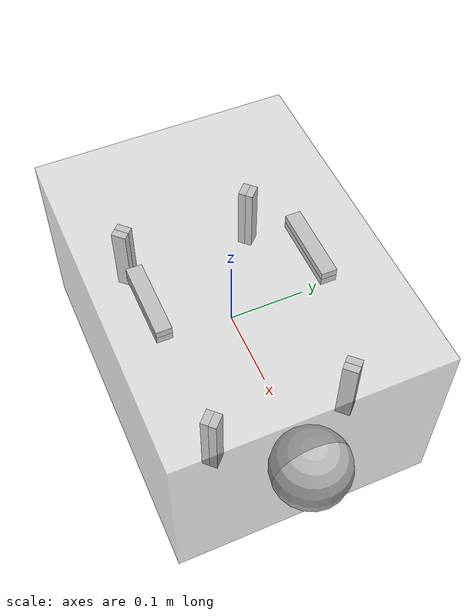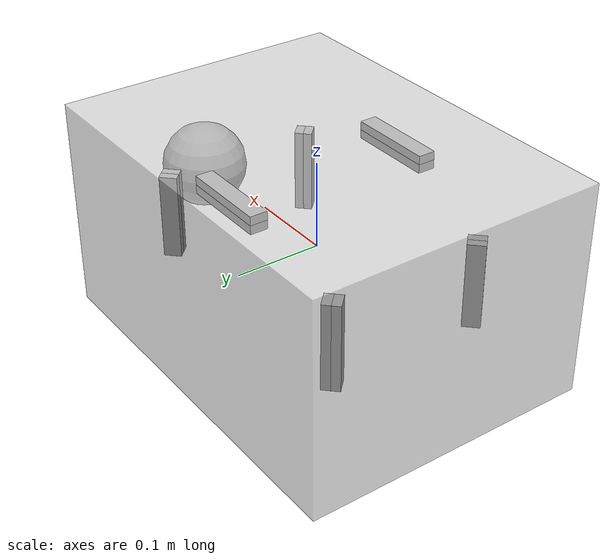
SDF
<?xml version="1.0"?>
<sdf version="1.6">
  <model name="bluerov2_lidar">
    <include merge="true">
      <uri>bluerov2</uri>
    </include>

    <link name="lidar_link">
      <pose>0 -0.0 -0.17 0 1.25 1.25</pose>
      <!-- fake values, ping360 is heavier -->
      <inertial>
        <mass>0.01</mass>
        <inertia>
          <ixx>0.000009427233333333334</ixx>
          <ixy>0</ixy>
          <ixz>0</ixz>
          <iyy>0.000009427233333333333</iyy>
          <iyz>0</iyz>
          <izz>0.000007372799999999999</izz>
        </inertia>
      </inertial>

      <visual name="lidar_visual">
        <transparency>0.5</transparency>
        <geometry>
          <cylinder>
            <radius>0.0385</radius>
            <length>0.053</length>
          </cylinder>
        </geometry>
         <material>
            <ambient>1.0 0.0 0.0 1</ambient>
            <diffuse>1.0 0.0 0.0 1</diffuse>
            <specular>0.0 0.0 0.0 1</specular>
        </material>
      </visual>

      <collision name="lidar_collision">
        <geometry>
          <cylinder>
            <radius>0.0385</radius>
            <length>0.053</length>
          </cylinder>
        </geometry>
      </collision>

      <sensor name='gpu_lidar' type='gpu_lidar'>"
        <topic>lidar</topic>
        <visualize>true</visualize>
        <always_on>1</always_on>
        <update_rate>5</update_rate>
        <ray>
            <scan>
                <horizontal>
                    <samples>1</samples>
                    <resolution>1</resolution>
                    <min_angle>0</min_angle>
                    <max_angle>0</max_angle>
                </horizontal>
                <vertical>
                    <samples>360</samples>
                    <resolution>1</resolution>
                    <min_angle>-0.25</min_angle>
                    <max_angle>0.25</max_angle>
                </vertical>
            </scan>
            <range>
                <min>0.075</min>
                <max>20.0</max>
                <resolution>0.01</resolution>
            </range>
        </ray>
      </sensor>
    </link>

    <joint name="lidar_joint" type="fixed">
      <parent>base_link</parent>
      <child>lidar_link</child>
      <axis>
        <xyz>1 0 0</xyz>
      </axis>
    </joint>

    <frame name="lidar_frame" attached_to='lidar_link'>
      <pose>0 0 0 0 0 0</pose>
    </frame>

  </model>
</sdf>

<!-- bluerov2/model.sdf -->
<sdf version="1.6">
  <model name="bluerov2">
    <pose>0 0 0 0 0 0</pose>

    <!-- BlueROV2 thruster reference: http://www.ardusub.com/introduction/features.html -->
    <!-- fluid_density: 1000 -->
    <!-- displaced_mass: 10.05 -->

    <link name="base_link">
      <inertial>
        <pose>0 0 0.011 0 0 0</pose>
        <mass>10</mass>
        <inertia>
          <ixx>0.09873097998042396</ixx>
          <ixy>0</ixy>
          <ixz>0</ixz>
          <iyy>0.17756847998042397</iyy>
          <iyz>0</iyz>
          <izz>0.2692441666666667</izz>
        </inertia>
      </inertial>

      <visual name="base_link_box">
        <pose>0 0 0 0 0 0</pose>
        <transparency>0.5</transparency>
        <geometry>
          <box>
            <size>0.457 0.338 0.25</size>
          </box>
        </geometry>
      </visual>

      <visual name="base_link_dome">
        <pose>0.2285 0 0 0 0 0</pose>
        <geometry>
          <sphere>
            <radius>0.05</radius>
          </sphere>
        </geometry>
        <material>
          <emissive>0 1 0 0</emissive>
        </material>
      </visual>

      <!-- Collision volume * fluid_density == displaced mass, used by BuoyancyPlugin -->
      <collision name="base_link_collision">
        <pose>0 0 0.06 0 0 0</pose>
        <geometry>
          <box>
            <size>0.457 0.338 0.06506286173008947</size>
          </box>
        </geometry>
      </collision>

      <!-- IMU sensor gyro and accel data will be sent to ArduSub -->
      <sensor name="imu_sensor" type="imu">
        <!-- Transform from the Gazebo body frame (x-forward, y-left, z-up)
             to the ArduPilot body frame (x-forward, y-right, z-down) -->
        <pose>0 0 0 3.141592653589793 0 0</pose>
        <always_on>1</always_on>
        <update_rate>1000.0</update_rate>
      </sensor>

    </link>

    <plugin
        filename="ignition-gazebo-pose-publisher-system"
        name="ignition::gazebo::systems::PosePublisher">
      <publish_link_pose>false</publish_link_pose>
      <publish_collision_pose>false</publish_collision_pose>
      <publish_visual_pose>false</publish_visual_pose>
      <publish_sensor_pose>false</publish_sensor_pose>
      <publish_nested_model_pose>true</publish_nested_model_pose>
      <update_frequency>20</update_frequency>
    </plugin>

    <!-- Hydrodynamics plugin -->
    <plugin
        filename="gz-sim-hydrodynamics-system"
        name="gz::sim::systems::Hydrodynamics">
      <link_name>base_link</link_name>
      <water_density>1000</water_density>
      <!-- Added mass: -->
      <xDotU>0</xDotU>
      <yDotV>0</yDotV>
      <zDotW>0</zDotW>
      <kDotP>0</kDotP>
      <mDotQ>0</mDotQ>
      <nDotR>0</nDotR>
      <!-- First order stability derivative: -->
      <xU>0</xU>
      <yV>0</yV>
      <zW>0</zW>
      <kP>0</kP>
      <mQ>0</mQ>
      <nR>0</nR>
      <!-- Second order stability derivative: -->
      <xUabsU>-33.800000000000004</xUabsU>
      <yVabsV>-54.26875</yVabsV>
      <zWabsW>-73.37135</zWabsW>
      <kPabsP>-4.0</kPabsP>
      <mQabsQ>-4.0</mQabsQ>
      <nRabsR>-4.0</nRabsR>
    </plugin>

    <link name="thruster1">
      <pose>0.15 -0.09 0 -1.5707963267948966 1.5707963267948966 -0.7853981633974483</pose>
      <visual name="thruster_front">
        <pose>0 0 0.005 0 0 0</pose>
        <geometry>
          <box>
            <size>0.1 0.02 0.01</size>
          </box>
        </geometry>
        <material>
          <emissive>0 0 1 0</emissive>
        </material>
      </visual>
      <visual name="thruster_back">
        <pose>0 0 -0.005 0 0 0</pose>
        <geometry>
          <box>
            <size>0.1 0.02 0.01</size>
          </box>
        </geometry>
        <material>
          <emissive>1 0 0 0</emissive>
        </material>
      </visual>
      <inertial>
        <mass>0.002</mass>
        <inertia>
          <ixx>0.001</ixx>
          <ixy>0</ixy>
          <ixz>0</ixz>
          <iyy>0.001</iyy>
          <iyz>0</iyz>
          <izz>0.001</izz>
        </inertia>
      </inertial>
    </link>

    <link name="thruster2">
      <pose>0.15 0.09 0 -1.5707963267948966 1.5707963267948966 -2.356194490192345</pose>
      <visual name="thruster_front">
        <pose>0 0 0.005 0 0 0</pose>
        <geometry>
          <box>
            <size>0.1 0.02 0.01</size>
          </box>
        </geometry>
        <material>
          <emissive>0 0 1 0</emissive>
        </material>
      </visual>
      <visual name="thruster_back">
        <pose>0 0 -0.005 0 0 0</pose>
        <geometry>
          <box>
            <size>0.1 0.02 0.01</size>
          </box>
        </geometry>
        <material>
          <emissive>1 0 0 0</emissive>
        </material>
      </visual>
      <inertial>
        <mass>0.002</mass>
        <inertia>
          <ixx>0.001</ixx>
          <ixy>0</ixy>
          <ixz>0</ixz>
          <iyy>0.001</iyy>
          <iyz>0</iyz>
          <izz>0.001</izz>
        </inertia>
      </inertial>
    </link>

    <link name="thruster3">
      <pose>-0.15 -0.09 0 -1.5707963267948966 1.5707963267948966 0.7853981633974483</pose>
      <visual name="thruster_front">
        <pose>0 0 0.005 0 0 0</pose>
        <geometry>
          <box>
            <size>0.1 0.02 0.01</size>
          </box>
        </geometry>
        <material>
          <emissive>0 0 1 0</emissive>
        </material>
      </visual>
      <visual name="thruster_back">
        <pose>0 0 -0.005 0 0 0</pose>
        <geometry>
          <box>
            <size>0.1 0.02 0.01</size>
          </box>
        </geometry>
        <material>
          <emissive>1 0 0 0</emissive>
        </material>
      </visual>
      <inertial>
        <mass>0.002</mass>
        <inertia>
          <ixx>0.001</ixx>
          <ixy>0</ixy>
          <ixz>0</ixz>
          <iyy>0.001</iyy>
          <iyz>0</iyz>
          <izz>0.001</izz>
        </inertia>
      </inertial>
    </link>

    <link name="thruster4">
      <pose>-0.15 0.09 0 -1.5707963267948966 1.5707963267948966 2.356194490192345</pose>
      <visual name="thruster_front">
        <pose>0 0 0.005 0 0 0</pose>
        <geometry>
          <box>
            <size>0.1 0.02 0.01</size>
          </box>
        </geometry>
        <material>
          <emissive>0 0 1 0</emissive>
        </material>
      </visual>
      <visual name="thruster_back">
        <pose>0 0 -0.005 0 0 0</pose>
        <geometry>
          <box>
            <size>0.1 0.02 0.01</size>
          </box>
        </geometry>
        <material>
          <emissive>1 0 0 0</emissive>
        </material>
      </visual>
      <inertial>
        <mass>0.002</mass>
        <inertia>
          <ixx>0.001</ixx>
          <ixy>0</ixy>
          <ixz>0</ixz>
          <iyy>0.001</iyy>
          <iyz>0</iyz>
          <izz>0.001</izz>
        </inertia>
      </inertial>
    </link>

    <link name="thruster5">
      <pose>0 -0.105 0.09 0 0 0</pose>
      <visual name="thruster_front">
        <pose>0 0 0.005 0 0 0</pose>
        <geometry>
          <box>
            <size>0.1 0.02 0.01</size>
          </box>
        </geometry>
        <material>
          <emissive>0 0 1 0</emissive>
        </material>
      </visual>
      <visual name="thruster_back">
        <pose>0 0 -0.005 0 0 0</pose>
        <geometry>
          <box>
            <size>0.1 0.02 0.01</size>
          </box>
        </geometry>
        <material>
          <emissive>1 0 0 0</emissive>
        </material>
      </visual>
      <inertial>
        <mass>0.002</mass>
        <inertia>
          <ixx>0.001</ixx>
          <ixy>0</ixy>
          <ixz>0</ixz>
          <iyy>0.001</iyy>
          <iyz>0</iyz>
          <izz>0.001</izz>
        </inertia>
      </inertial>
    </link>

    <link name="thruster6">
      <pose>0 0.105 0.09 0 0 0</pose>
      <visual name="thruster_front">
        <pose>0 0 0.005 0 0 0</pose>
        <geometry>
          <box>
            <size>0.1 0.02 0.01</size>
          </box>
        </geometry>
        <material>
          <emissive>0 0 1 0</emissive>
        </material>
      </visual>
      <visual name="thruster_back">
        <pose>0 0 -0.005 0 0 0</pose>
        <geometry>
          <box>
            <size>0.1 0.02 0.01</size>
          </box>
        </geometry>
        <material>
          <emissive>1 0 0 0</emissive>
        </material>
      </visual>
      <inertial>
        <mass>0.002</mass>
        <inertia>
          <ixx>0.001</ixx>
          <ixy>0</ixy>
          <ixz>0</ixz>
          <iyy>0.001</iyy>
          <iyz>0</iyz>
          <izz>0.001</izz>
        </inertia>
      </inertial>
    </link>

    <joint name="thruster1_joint" type="revolute">
      <parent>base_link</parent>
      <child>thruster1</child>
      <axis>
        <xyz>0 0 -1</xyz>
      </axis>
    </joint>

    <joint name="thruster2_joint" type="revolute">
      <parent>base_link</parent>
      <child>thruster2</child>
      <axis>
        <xyz>0 0 -1</xyz>
      </axis>
    </joint>

    <joint name="thruster3_joint" type="revolute">
      <parent>base_link</parent>
      <child>thruster3</child>
      <axis>
        <xyz>0 0 -1</xyz>
      </axis>
    </joint>

    <joint name="thruster4_joint" type="revolute">
      <parent>base_link</parent>
      <child>thruster4</child>
      <axis>
        <xyz>0 0 -1</xyz>
      </axis>
    </joint>

    <joint name="thruster5_joint" type="revolute">
      <parent>base_link</parent>
      <child>thruster5</child>
      <axis>
        <xyz>0 0 -1</xyz>
      </axis>
    </joint>

    <joint name="thruster6_joint" type="revolute">
      <parent>base_link</parent>
      <child>thruster6</child>
      <axis>
        <xyz>0 0 -1</xyz>
      </axis>
    </joint>

    <plugin
        filename="gz-sim-thruster-system"
        name="gz::sim::systems::Thruster">
      <namespace>bluerov2</namespace>
      <joint_name>thruster1_joint</joint_name>
      <thrust_coefficient>0.02</thrust_coefficient>
      <fluid_density>1000</fluid_density>
      <propeller_diameter>0.1</propeller_diameter>
      <velocity_control>true</velocity_control>
      <use_angvel_cmd>False</use_angvel_cmd>
    </plugin>

    <plugin
        filename="gz-sim-thruster-system"
        name="gz::sim::systems::Thruster">
      <namespace>bluerov2</namespace>
      <joint_name>thruster2_joint</joint_name>
      <thrust_coefficient>0.02</thrust_coefficient>
      <fluid_density>1000</fluid_density>
      <propeller_diameter>0.1</propeller_diameter>
      <velocity_control>true</velocity_control>
      <use_angvel_cmd>False</use_angvel_cmd>
    </plugin>

    <plugin
        filename="gz-sim-thruster-system"
        name="gz::sim::systems::Thruster">
      <namespace>bluerov2</namespace>
      <joint_name>thruster3_joint</joint_name>
      <!-- Reverse spin to balance torque -->
      <thrust_coefficient>-0.02</thrust_coefficient>
      <fluid_density>1000</fluid_density>
      <propeller_diameter>0.1</propeller_diameter>
      <velocity_control>true</velocity_control>
      <use_angvel_cmd>False</use_angvel_cmd>
    </plugin>

    <plugin
        filename="gz-sim-thruster-system"
        name="gz::sim::systems::Thruster">
      <namespace>bluerov2</namespace>
      <joint_name>thruster4_joint</joint_name>
      <!-- Reverse spin to balance torque -->
      <thrust_coefficient>-0.02</thrust_coefficient>
      <fluid_density>1000</fluid_density>
      <propeller_diameter>0.1</propeller_diameter>
      <velocity_control>true</velocity_control>
      <use_angvel_cmd>False</use_angvel_cmd>
    </plugin>

    <plugin
        filename="gz-sim-thruster-system"
        name="gz::sim::systems::Thruster">
      <namespace>bluerov2</namespace>
      <joint_name>thruster5_joint</joint_name>
      <thrust_coefficient>0.02</thrust_coefficient>
      <fluid_density>1000</fluid_density>
      <propeller_diameter>0.1</propeller_diameter>
      <velocity_control>true</velocity_control>
      <use_angvel_cmd>False</use_angvel_cmd>
    </plugin>

    <plugin
        filename="gz-sim-thruster-system"
        name="gz::sim::systems::Thruster">
      <namespace>bluerov2</namespace>
      <joint_name>thruster6_joint</joint_name>
      <!-- Reverse spin to balance torque -->
      <thrust_coefficient>-0.02</thrust_coefficient>
      <fluid_density>1000</fluid_density>
      <propeller_diameter>0.1</propeller_diameter>
      <velocity_control>true</velocity_control>
      <use_angvel_cmd>False</use_angvel_cmd>
    </plugin>

    <plugin name="ArduPilotPlugin" filename="libArduPilotPlugin.so">
      <!-- Port settings -->
      <fdm_addr>127.0.0.1</fdm_addr>
      <fdm_port_in>9002</fdm_port_in>
      <connectionTimeoutMaxCount>5</connectionTimeoutMaxCount>
      <lock_step>1</lock_step>

      <!-- Transform from the Gazebo body frame (x-forward, y-left, z-up)
           to the ArduPilot body frame (x-forward, y-right, z-down) -->
      <modelXYZToAirplaneXForwardZDown>0 0 0 3.141592653589793 0 0</modelXYZToAirplaneXForwardZDown>

      <!-- Transform from the Gazebo world frame (ENU)
           to the ArduPilot world frame (NED) -->
      <gazeboXYZToNED>0 0 0 3.141592653589793 0 1.5707963267948966</gazeboXYZToNED>

      <!-- Sensors -->
      <imuName>imu_sensor</imuName>

      <!-- Thrusters -->
      <control channel="0">
        <jointName>thruster1_joint</jointName>
        <servo_min>1100</servo_min>
        <servo_max>1900</servo_max>
        <type>COMMAND</type>
        <cmd_topic>/model/bluerov2/joint/thruster1_joint/cmd_thrust</cmd_topic>
        <offset>-0.5</offset>
        <multiplier>100</multiplier>
      </control>
      <control channel="1">
        <jointName>thruster2_joint</jointName>
        <servo_min>1100</servo_min>
        <servo_max>1900</servo_max>
        <type>COMMAND</type>
        <cmd_topic>/model/bluerov2/joint/thruster2_joint/cmd_thrust</cmd_topic>
        <offset>-0.5</offset>
        <multiplier>100</multiplier>
      </control>
      <control channel="2">
        <jointName>thruster3_joint</jointName>
        <servo_min>1100</servo_min>
        <servo_max>1900</servo_max>
        <type>COMMAND</type>
        <cmd_topic>/model/bluerov2/joint/thruster3_joint/cmd_thrust</cmd_topic>
        <offset>-0.5</offset>
        <multiplier>100</multiplier>
      </control>
      <control channel="3">
        <jointName>thruster4_joint</jointName>
        <servo_min>1100</servo_min>
        <servo_max>1900</servo_max>
        <type>COMMAND</type>
        <cmd_topic>/model/bluerov2/joint/thruster4_joint/cmd_thrust</cmd_topic>
        <offset>-0.5</offset>
        <multiplier>100</multiplier>
      </control>
      <control channel="4">
        <jointName>thruster5_joint</jointName>
        <servo_min>1100</servo_min>
        <servo_max>1900</servo_max>
        <type>COMMAND</type>
        <cmd_topic>/model/bluerov2/joint/thruster5_joint/cmd_thrust</cmd_topic>
        <offset>-0.5</offset>
        <multiplier>100</multiplier>
      </control>
      <control channel="5">
        <jointName>thruster6_joint</jointName>
        <servo_min>1100</servo_min>
        <servo_max>1900</servo_max>
        <type>COMMAND</type>
        <cmd_topic>/model/bluerov2/joint/thruster6_joint/cmd_thrust</cmd_topic>
        <offset>-0.5</offset>
        <multiplier>100</multiplier>
      </control>

    </plugin>

  </model>
</sdf>
